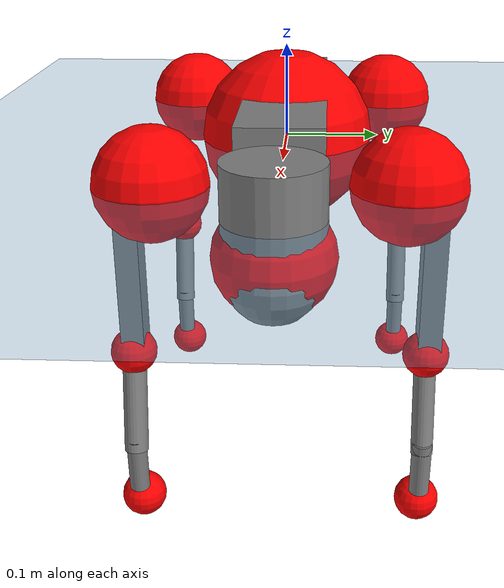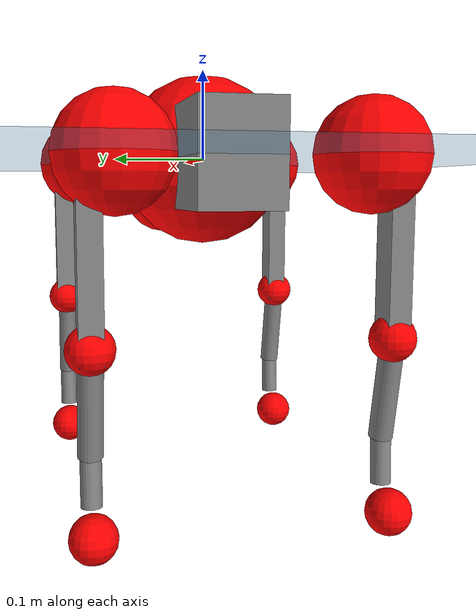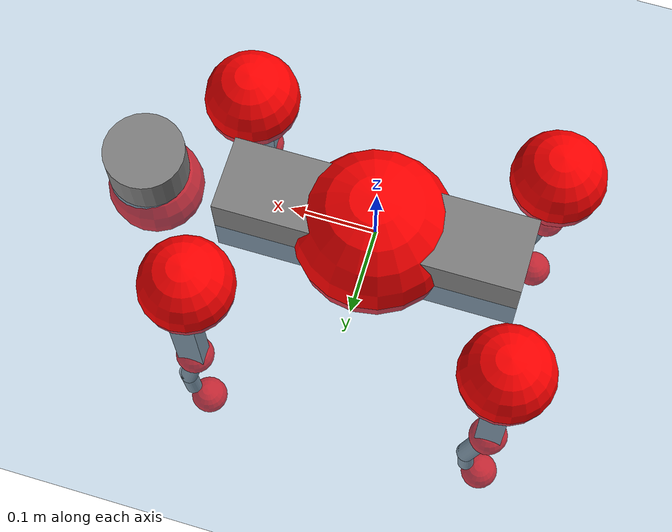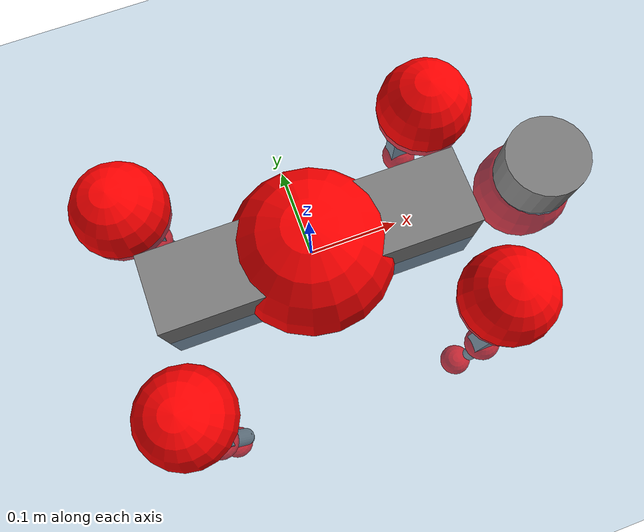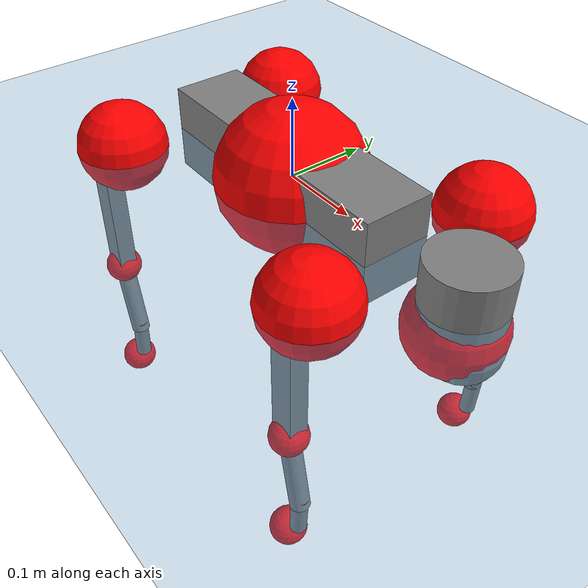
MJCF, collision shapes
<mujoco model="go2">
  <compiler angle="radian" assetdir="assets" balanceinertia="true" inertiafromgeom="false"/>

  <option timestep="0.005" density="1.2" viscosity="2e-05"/>

  <size nkey="1"/>

  <visual>
    <quality shadowsize="8192"/>
    <map shadowclip="0.5"/>
  </visual>

  <default>
    <default class="/">
      <geom contype="0" conaffinity="0" group="1" solref="-1000 -80"/>
      <site size="0.01 0.005 0.005" group="5"/>
      <general forcelimited="true" biastype="affine" gainprm="20" biasprm="0 -20 -0.5"/>
      <default class="go2">
        <joint armature="0.01" damping="0.01" frictionloss="0.2"/>
        <geom condim="1" margin="0.001"/>
        <default class="visual">
          <geom type="mesh" group="2"/>
        </default>
        <default class="collision">
          <geom group="3"/>
          <default class="foot">
            <geom size="0.022 0 0" condim="6" priority="1" friction="0.8 0.02 0.01" solimp="0.015 1 0.022"/>
          </default>
        </default>
        <default class="reward_collision_sphere">
          <geom group="5" rgba="1 0 0 1"/>
        </default>
      </default>
    </default>
  </default>

  <asset>
    <texture type="skybox" colorspace="auto" name="//unnamed_texture_0" builtin="gradient" rgb1="0.95 0.95 0.95" rgb2="0.95 0.95 0.95" width="100" height="600"/>
    <texture type="2d" colorspace="auto" name="texplane" builtin="checker" rgb1="0.345 0.575 0.748" rgb2="0.345 0.575 0.748" markrgb="1 1 1" width="512" height="512"/>
    <material name="MatPlane" class="/" texture="texplane" texuniform="true" texrepeat="2 2" specular="0.9"/>
    <material name="metal" class="/" rgba="0.9 0.95 0.95 1"/>
    <material name="black" class="/" rgba="0 0 0 1"/>
    <material name="white" class="/"/>
    <material name="gray" class="/" rgba="0.671705 0.692426 0.77427 1"/>
    <mesh name="base_0" class="/" file="base_0.obj"/>
    <mesh name="base_1" class="/" file="base_1.obj"/>
    <mesh name="base_2" class="/" file="base_2.obj"/>
    <mesh name="base_3" class="/" file="base_3.obj"/>
    <mesh name="base_4" class="/" file="base_4.obj"/>
    <mesh name="hip_0" class="/" file="hip_0.obj"/>
    <mesh name="hip_1" class="/" file="hip_1.obj"/>
    <mesh name="thigh_0" class="/" file="thigh_0.obj"/>
    <mesh name="thigh_1" class="/" file="thigh_1.obj"/>
    <mesh name="thigh_mirror_0" class="/" file="thigh_mirror_0.obj"/>
    <mesh name="thigh_mirror_1" class="/" file="thigh_mirror_1.obj"/>
    <mesh name="calf_0" class="/" file="calf_0.obj"/>
    <mesh name="calf_1" class="/" file="calf_1.obj"/>
    <mesh name="calf_mirror_0" class="/" file="calf_mirror_0.obj"/>
    <mesh name="calf_mirror_1" class="/" file="calf_mirror_1.obj"/>
    <mesh name="foot" class="/" file="foot.obj"/>
  </asset>

  <worldbody>
    <geom name="floor" class="/" size="100 100 0.125" type="plane" group="0" material="MatPlane"/>
    <light name="toplight_shadow" class="/" pos="0 0 5" dir="0.0990148 0.0990148 -0.990148" type="directional" ambient="0.04 0.04 0.04" diffuse="0.55 0.55 0.55" specular="0.12 0.12 0.12"/>
    <light name="toplight_fill" class="/" pos="0 0 5" dir="0.0990148 0.0990148 -0.990148" type="directional" castshadow="false" ambient="0.04 0.04 0.04" diffuse="0.3 0.3 0.3" specular="0.08 0.08 0.08"/>
    <body name="trunk" childclass="go2" pos="0.000510488 -2.01026e-05 -0.000156555" quat="1 -0.000149502 0.000120518 0.000188776">
      <inertial pos="0.0192086 -0.00137816 -0.00549605" quat="-0.0051358 0.713777 -0.00307667 0.700348" mass="5.70249" diaginertia="0.0840911 0.122171 0.00971361"/>
      <joint name="//unnamed_joint_0" type="free" armature="0" damping="0" frictionloss="0"/>
      <geom name="//unnamed_geom_1" class="visual" material="black" mesh="base_0"/>
      <geom name="//unnamed_geom_2" class="visual" material="black" mesh="base_1"/>
      <geom name="//unnamed_geom_3" class="visual" material="black" mesh="base_2"/>
      <geom name="//unnamed_geom_4" class="visual" material="white" mesh="base_3"/>
      <geom name="//unnamed_geom_5" class="visual" material="gray" mesh="base_4"/>
      <geom name="trunk_1" class="collision" size="0.177069 0.0440084 0.0536573" type="box"/>
      <geom name="trunk_2" class="collision" size="0.0470678 0.042361" pos="0.271445 0 0.00830057" type="cylinder"/>
      <geom name="trunk_3" class="collision" size="0.0442438" pos="0.279064 0 -0.0498034"/>
      <geom name="//unnamed_geom_9" class="reward_collision_sphere" size="0.0941357"/>
      <geom name="//unnamed_geom_10" class="reward_collision_sphere" size="0.0564814" pos="0.266683 0 -0.0373526"/>
      <site name="imu" pos="-0.0349076 -0.00214694 0.0421015" size="0.00941357"/>
      <camera name="track" pos="0 -2.08315 0" quat="0.707107 0.707107 0 0" mode="trackcom"/>
      <camera name="ego_camera" pos="0.297161 0 0.0373526" quat="-0.5 -0.5 0.5 0.5"/>
      <body name="FL_hip" pos="0.184303 0.0494616 0.00109921" quat="1 -0.000240692 0.000235623 -9.88233e-07">
        <inertial pos="-0.00354485 0.00296838 -0.000666853" quat="0.496042 0.499115 0.504816 0.499988" mass="0.554699" diaginertia="0.000678305 0.000733606 0.000187163"/>
        <joint name="FL_hip_joint" pos="0 0 0" axis="0.999959 0.00697751 -0.00584958" stiffness="0.00182236" range="-1.05877 1.03676" armature="0.0103071" damping="0.00130806" frictionloss="0.187306"/>
        <geom name="//unnamed_geom_11" class="visual" material="metal" mesh="hip_0"/>
        <geom name="//unnamed_geom_12" class="visual" material="gray" mesh="hip_1"/>
        <geom name="//unnamed_geom_13" class="collision" size="0.0433024 0.0188271" pos="0 0.0833259 0" quat="0.707107 0.707107 0 0" type="cylinder"/>
        <geom name="//unnamed_geom_14" class="reward_collision_sphere" size="0.0564814" pos="0 0.0729102 0"/>
        <body name="FL_thigh" pos="-0.000844768 0.100179 0.00179908" quat="1 -0.000298538 -8.51501e-05 0.000107057">
          <inertial pos="-0.0048071 -0.0229235 -0.0255296" quat="0.827969 0.0832858 -0.0197981 0.554201" mass="0.960791" diaginertia="0.00458719 0.0071842 0.000347043"/>
          <joint name="FL_thigh_joint" pos="0 0 0" axis="-0.000268566 0.999999 -0.00159295" range="-1.55934 3.47997" armature="0.00950444" damping="0.0138661" frictionloss="0.175033"/>
          <geom name="//unnamed_geom_15" class="visual" material="metal" mesh="thigh_0"/>
          <geom name="//unnamed_geom_16" class="visual" material="gray" mesh="thigh_1"/>
          <geom name="//unnamed_geom_17" class="collision" size="0.100254 0.0115316 0.0160031" pos="0 0 -0.0884011" quat="0.707107 0 0.707107 0" type="box"/>
          <body name="FL_calf" pos="7.99185e-05 -0.00174867 -0.179059" quat="1 -0.000247102 7.12619e-05 0.00027963">
            <inertial pos="0.00658013 -0.000779891 -0.116133" quat="0.709371 0.00354211 -0.0041902 0.704814" mass="0.203068" diaginertia="0.00117627 0.00178895 2.11705e-05"/>
            <joint name="FL_calf_joint" pos="0 0 0" axis="-0.00926534 0.999954 -0.00234199" stiffness="0.000570824" range="-2.72382 -0.857162" armature="0.00903172" damping="0" frictionloss="0.186467"/>
            <geom name="//unnamed_geom_18" class="visual" material="gray" mesh="calf_0"/>
            <geom name="//unnamed_geom_19" class="visual" material="black" mesh="calf_1"/>
            <geom name="FL_calf0" class="collision" size="0.0112963 0.0564814" pos="0.00761951 0 -0.0498034" quat="0.994493 0 -0.104807 0" type="cylinder"/>
            <geom name="//unnamed_geom_21" class="collision" size="0.0103549 0.0305941" pos="0.0190488 0 -0.122848" quat="0.999688 0 0.0249974 0" type="cylinder"/>
            <geom name="//unnamed_geom_22" class="visual" pos="0 0 -0.176802" quat="1 0 0 0" material="black" mesh="foot"/>
            <geom name="FL_foot" class="foot" size="0.0181583" pos="-0.00190488 0 -0.176802"/>
            <geom name="//unnamed_geom_24" class="reward_collision_sphere" size="0.0235339"/>
            <geom name="//unnamed_geom_25" class="reward_collision_sphere" size="0.0235339" pos="-0.00190488 0 -0.176802"/>
            <site name="FL_foot" class="foot" pos="-0.00190488 0 -0.176802" size="0.00941357"/>
          </body>
        </body>
      </body>
      <body name="FR_hip" pos="0.184959 -0.0480543 0.000823639" quat="1 6.75772e-05 -5.82129e-05 2.62887e-05">
        <inertial pos="-0.00363692 -0.00251277 0.000166576" quat="0.497368 0.505618 0.498833 0.498138" mass="0.567074" diaginertia="0.000698879 0.000723128 0.000188152"/>
        <joint name="FR_hip_joint" pos="0 0 0" axis="0.999984 0.00339874 -0.00451249" stiffness="0.00210458" range="-1.08009 1.05787" armature="0.00879086" damping="0.01957" frictionloss="0.17478"/>
        <geom name="//unnamed_geom_26" class="visual" pos="0 1.84265e-09 7.9035e-08" quat="4.63268e-05 1 0 0" material="metal" mesh="hip_0"/>
        <geom name="//unnamed_geom_27" class="visual" pos="0 2.98715e-09 -1.95484e-07" quat="4.63268e-05 1 0 0" material="gray" mesh="hip_1"/>
        <geom name="//unnamed_geom_28" class="collision" size="0.0433024 0.0188271" pos="0 -0.0833259 0" quat="0.707107 0.707107 0 0" type="cylinder"/>
        <geom name="//unnamed_geom_29" class="reward_collision_sphere" size="0.0564814" pos="0 -0.0729102 0"/>
        <body name="FR_thigh" pos="0.0013833 -0.097568 0.000197041" quat="1 -3.08873e-05 0.000171154 2.57907e-05">
          <inertial pos="-0.00352287 0.023791 -0.0275693" quat="0.549691 -0.0194488 0.0906727 0.830205" mass="0.932339" diaginertia="0.00465843 0.0070888 0.000339727"/>
          <joint name="FR_thigh_joint" pos="0 0 0" axis="-0.00637065 -0.999979 0.000958844" stiffness="0.000637031" range="-3.45015 1.57079" armature="0.00949396" damping="0.0031213" frictionloss="0.2102"/>
          <geom name="//unnamed_geom_30" class="visual" material="metal" mesh="thigh_mirror_0"/>
          <geom name="//unnamed_geom_31" class="visual" material="gray" mesh="thigh_mirror_1"/>
          <geom name="//unnamed_geom_32" class="collision" size="0.100254 0.0115316 0.0160031" pos="0 0 -0.0884011" quat="0.707107 0 0.707107 0" type="box"/>
          <body name="FR_calf" pos="0.00133323 -0.00198692 -0.177436" quat="1 -3.78167e-05 8.39506e-05 -5.58493e-05">
            <inertial pos="0.00590118 0.000642054 -0.11596" quat="0.702178 -0.00579399 0.00253856 0.711973" mass="0.200869" diaginertia="0.00114039 0.00177862 2.10293e-05"/>
            <joint name="FR_calf_joint" pos="0 0 0" axis="0.000927251 -0.999999 0.000673392" stiffness="0.000508671" range="0.845161 2.72237" armature="0.00983357" damping="0.0114634" frictionloss="0.17007"/>
            <geom name="//unnamed_geom_33" class="visual" material="gray" mesh="calf_mirror_0"/>
            <geom name="//unnamed_geom_34" class="visual" material="black" mesh="calf_mirror_1"/>
            <geom name="FR_calf0" class="collision" size="0.0122376 0.0564814" pos="0.00952438 0 -0.0498034" quat="0.995004 0 -0.0998334 0" type="cylinder"/>
            <geom name="//unnamed_geom_36" class="collision" size="0.0103549 0.0305941" pos="0.0190488 0 -0.122848" quat="0.999688 0 0.0249974 0" type="cylinder"/>
            <geom name="//unnamed_geom_37" class="visual" pos="0 0 -0.176802" quat="1 0 0 0" material="black" mesh="foot"/>
            <geom name="FR_foot" class="foot" size="0.0201175" pos="-0.00190488 0 -0.176802"/>
            <geom name="//unnamed_geom_39" class="reward_collision_sphere" size="0.0235339"/>
            <geom name="//unnamed_geom_40" class="reward_collision_sphere" size="0.0235339" pos="-0.00190488 0 -0.176802"/>
            <site name="FR_foot" class="foot" pos="-0.00190488 0 -0.176802" size="0.00941357"/>
          </body>
        </body>
      </body>
      <body name="RL_hip" pos="-0.186271 0.0477143 -0.000940686" quat="1 6.09361e-05 -2.2354e-05 8.2543e-05">
        <inertial pos="0.00411836 0.00406433 0.000680796" quat="0.505786 0.49691 0.498052 0.499204" mass="0.560826" diaginertia="0.000690907 0.00073779 0.000183117"/>
        <joint name="RL_hip_joint" pos="0 0 0" axis="-0.999831 0.0119481 -0.013973" stiffness="0.0039722" range="-1.06915 0.999891" armature="0.00863551" damping="0.0090782" frictionloss="0.188723"/>
        <geom name="//unnamed_geom_41" class="visual" pos="-1.06613e-09 0 -2.08987e-07" quat="4.63268e-05 0 1 0" material="metal" mesh="hip_0"/>
        <geom name="//unnamed_geom_42" class="visual" pos="-1.72833e-09 0 -1.85342e-07" quat="4.63268e-05 0 1 0" material="gray" mesh="hip_1"/>
        <geom name="//unnamed_geom_43" class="collision" size="0.0433024 0.0188271" pos="0 0.0833259 0" quat="0.707107 0.707107 0 0" type="cylinder"/>
        <geom name="//unnamed_geom_44" class="reward_collision_sphere" size="0.0564814" pos="0 0.0729102 0"/>
        <body name="RL_thigh" pos="0.000189389 0.0966228 0.000166108" quat="1 2.99658e-05 3.44046e-05 -4.80349e-06">
          <inertial pos="-0.00365593 -0.0220481 -0.0276043" quat="0.829573 0.0826491 -0.0208797 0.551853" mass="0.960098" diaginertia="0.00466062 0.00718498 0.000342366"/>
          <joint name="RL_thigh_joint" pos="0 0 0" axis="0.00131906 0.999973 0.00727177" stiffness="0.00130266" range="-0.52765 4.52911" armature="0.00979358" damping="0.00767789" frictionloss="0.179116"/>
          <geom name="//unnamed_geom_45" class="visual" material="metal" mesh="thigh_0"/>
          <geom name="//unnamed_geom_46" class="visual" material="gray" mesh="thigh_1"/>
          <geom name="//unnamed_geom_47" class="collision" size="0.100254 0.0115316 0.0160031" pos="0 0 -0.0884011" quat="0.707107 0 0.707107 0" type="box"/>
          <body name="RL_calf" pos="0.00055179 0.000182543 -0.175875" quat="1 -7.14097e-05 0.00045245 0.000369265">
            <inertial pos="0.00605212 -0.000429302 -0.11754" quat="0.714896 -0.00783039 -0.00195463 0.699184" mass="0.201578" diaginertia="0.00117395 0.00180761 2.04029e-05"/>
            <joint name="RL_calf_joint" pos="0 0 0" axis="-0.0124124 0.999923 -3.77734e-05" stiffness="0.00234002" range="-2.72827 -0.833944" armature="0.00914146" damping="0.00374681" frictionloss="0.187716"/>
            <geom name="//unnamed_geom_48" class="visual" material="gray" mesh="calf_0"/>
            <geom name="//unnamed_geom_49" class="visual" material="black" mesh="calf_1"/>
            <geom name="RL_calf0" class="collision" size="0.0122376 0.0564814" pos="0.00952438 0 -0.0498034" quat="0.995004 0 -0.0998334 0" type="cylinder"/>
            <geom name="//unnamed_geom_51" class="collision" size="0.0103549 0.0305941" pos="0.0190488 0 -0.122848" quat="0.999688 0 0.0249974 0" type="cylinder"/>
            <geom name="//unnamed_geom_52" class="visual" pos="0 0 -0.176802" quat="1 0 0 0" material="black" mesh="foot"/>
            <geom name="RL_foot" class="foot" size="0.0186991" pos="-0.00190488 0 -0.176802"/>
            <geom name="//unnamed_geom_54" class="reward_collision_sphere" size="0.0235339"/>
            <geom name="//unnamed_geom_55" class="reward_collision_sphere" size="0.0235339" pos="-0.00190488 0 -0.176802"/>
            <site name="RL_foot" class="foot" pos="-0.00190488 0 -0.176802" size="0.00941357"/>
          </body>
        </body>
      </body>
      <body name="RR_hip" pos="-0.183586 -0.0509966 -0.000631606" quat="1 0.000314744 -1.90774e-05 -0.000255039">
        <inertial pos="0.00335487 -0.00158647 0.00122346" quat="0.497311 0.499109 0.497032 0.50649" mass="0.571804" diaginertia="0.000700407 0.00073761 0.000186378"/>
        <joint name="RR_hip_joint" pos="0 0 0" axis="-1 0.000335014 -0.000168305" range="-1.06766 1.08863" armature="0.00919742" damping="0.00204176" frictionloss="0.190311"/>
        <geom name="//unnamed_geom_56" class="visual" pos="1.06922e-09 1.84265e-09 -2.88022e-07" quat="2.14617e-09 4.63268e-05 4.63268e-05 -1" material="metal" mesh="hip_0"/>
        <geom name="//unnamed_geom_57" class="visual" pos="1.7207e-09 2.98715e-09 1.0142e-08" quat="2.14617e-09 4.63268e-05 4.63268e-05 -1" material="gray" mesh="hip_1"/>
        <geom name="//unnamed_geom_58" class="collision" size="0.0433024 0.0188271" pos="0 -0.0833259 0" quat="0.707107 0.707107 0 0" type="cylinder"/>
        <geom name="//unnamed_geom_59" class="reward_collision_sphere" size="0.0564814" pos="0 -0.0729102 0"/>
        <body name="RR_thigh" pos="0.000823084 -0.0992918 0.000695933" quat="1 3.4721e-05 -8.23251e-05 -0.000108804">
          <inertial pos="-0.00322312 0.0235289 -0.0271112" quat="0.551715 -0.0200441 0.0847876 0.82947" mass="0.910941" diaginertia="0.00446566 0.00694978 0.000335653"/>
          <joint name="RR_thigh_joint" pos="0 0 0" axis="-0.00226684 -0.999928 -0.0118097" stiffness="0.000576345" range="-4.53789 0.528955" armature="0.00989348" damping="0.0219393" frictionloss="0.189288"/>
          <geom name="//unnamed_geom_60" class="visual" material="metal" mesh="thigh_mirror_0"/>
          <geom name="//unnamed_geom_61" class="visual" material="gray" mesh="thigh_mirror_1"/>
          <geom name="//unnamed_geom_62" class="collision" size="0.100254 0.0115316 0.0160031" pos="0 0 -0.0884011" quat="0.707107 0 0.707107 0" type="box"/>
          <body name="RR_calf" pos="-0.000977623 0.000117352 -0.178528" quat="1 0.000309437 8.53431e-05 -0.000366356">
            <inertial pos="0.00684706 0.000604926 -0.11738" quat="0.705564 0.000168419 0.000861636 0.708646" mass="0.203775" diaginertia="0.00118287 0.00182663 2.10384e-05"/>
            <joint name="RR_calf_joint" pos="0 0 0" axis="0.0013198 -0.999991 0.00411242" stiffness="8.73813e-05" range="0.832347 2.7415" armature="0.00850452" damping="0.00362965" frictionloss="0.188845"/>
            <geom name="//unnamed_geom_63" class="visual" material="gray" mesh="calf_mirror_0"/>
            <geom name="//unnamed_geom_64" class="visual" material="black" mesh="calf_mirror_1"/>
            <geom name="RR_calf0" class="collision" size="0.0122376 0.0564814" pos="0.00952438 0 -0.0498034" quat="0.995004 0 -0.0998334 0" type="cylinder"/>
            <geom name="//unnamed_geom_66" class="collision" size="0.0103549 0.0305941" pos="0.0190488 0 -0.122848" quat="0.999688 0 0.0249974 0" type="cylinder"/>
            <geom name="//unnamed_geom_67" class="visual" pos="0 0 -0.176802" quat="1 0 0 0" material="black" mesh="foot"/>
            <geom name="RR_foot" class="foot" size="0.0217553" pos="-0.00190488 0 -0.176802"/>
            <geom name="//unnamed_geom_69" class="reward_collision_sphere" size="0.0235339"/>
            <geom name="//unnamed_geom_70" class="reward_collision_sphere" size="0.0235339" pos="-0.00190488 0 -0.176802"/>
            <site name="RR_foot" class="foot" pos="-0.00190488 0 -0.176802" size="0.00941357"/>
          </body>
        </body>
      </body>
    </body>
  </worldbody>

  <contact>
    <pair class="/" geom1="floor" geom2="FL_foot" name="//unnamed_contact_0"/>
    <pair class="/" geom1="floor" geom2="FR_foot" name="//unnamed_contact_1"/>
    <pair class="/" geom1="floor" geom2="RL_foot" name="//unnamed_contact_2"/>
    <pair class="/" geom1="floor" geom2="RR_foot" name="//unnamed_contact_3"/>
  </contact>

  <actuator>
    <general name="FL_hip" class="/" joint="FL_hip_joint" forcerange="-22.0616 22.0616" gainprm="18.7669" biasprm="0 -18.7669 -0.481267"/>
    <general name="FL_thigh" class="/" joint="FL_thigh_joint" forcerange="-22.7519 22.7519" gainprm="18.7669" biasprm="0 -18.7669 -0.481267"/>
    <general name="FL_calf" class="/" joint="FL_calf_joint" forcerange="-43.3382 43.3382" gainprm="18.7669" biasprm="0 -18.7669 -0.481267"/>
    <general name="FR_hip" class="/" joint="FR_hip_joint" forcerange="-22.5202 22.5202" gainprm="18.7669" biasprm="0 -18.7669 -0.481267"/>
    <general name="FR_thigh" class="/" joint="FR_thigh_joint" forcerange="-21.4996 21.4996" gainprm="18.7669" biasprm="0 -18.7669 -0.481267"/>
    <general name="FR_calf" class="/" joint="FR_calf_joint" forcerange="-40.4367 40.4367" gainprm="18.7669" biasprm="0 -18.7669 -0.481267"/>
    <general name="RL_hip" class="/" joint="RL_hip_joint" forcerange="-22.3055 22.3055" gainprm="18.7669" biasprm="0 -18.7669 -0.481267"/>
    <general name="RL_thigh" class="/" joint="RL_thigh_joint" forcerange="-21.1536 21.1536" gainprm="18.7669" biasprm="0 -18.7669 -0.481267"/>
    <general name="RL_calf" class="/" joint="RL_calf_joint" forcerange="-43.2486 43.2486" gainprm="18.7669" biasprm="0 -18.7669 -0.481267"/>
    <general name="RR_hip" class="/" joint="RR_hip_joint" forcerange="-23.1197 23.1197" gainprm="18.7669" biasprm="0 -18.7669 -0.481267"/>
    <general name="RR_thigh" class="/" joint="RR_thigh_joint" forcerange="-20.6824 20.6824" gainprm="18.7669" biasprm="0 -18.7669 -0.481267"/>
    <general name="RR_calf" class="/" joint="RR_calf_joint" forcerange="-44.9195 44.9195" gainprm="18.7669" biasprm="0 -18.7669 -0.481267"/>
  </actuator>

  <sensor>
    <gyro site="imu" name="imu_angular_velocity"/>
    <velocimeter site="imu" name="imu_linear_velocity"/>
    <framelinvel objtype="site" objname="FL_foot" name="FL_foot_global_linear_velocity"/>
    <framelinvel objtype="site" objname="FR_foot" name="FR_foot_global_linear_velocity"/>
    <framelinvel objtype="site" objname="RL_foot" name="RL_foot_global_linear_velocity"/>
    <framelinvel objtype="site" objname="RR_foot" name="RR_foot_global_linear_velocity"/>
  </sensor>

  <keyframe>
    <key name="home" qpos="0 0 0.325 1 0 0 0 0.1 0.8 -1.5 -0.1 -0.8 1.5 -0.1 0.8 -1.5 0.1 -0.8 1.5"/>
  </keyframe>
</mujoco>
